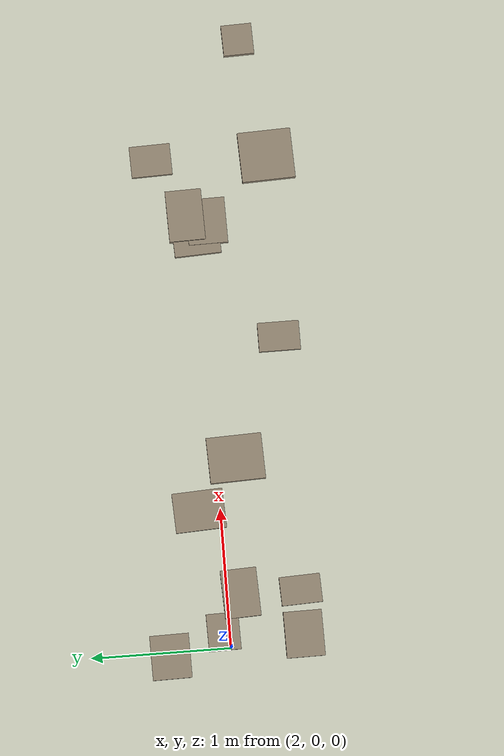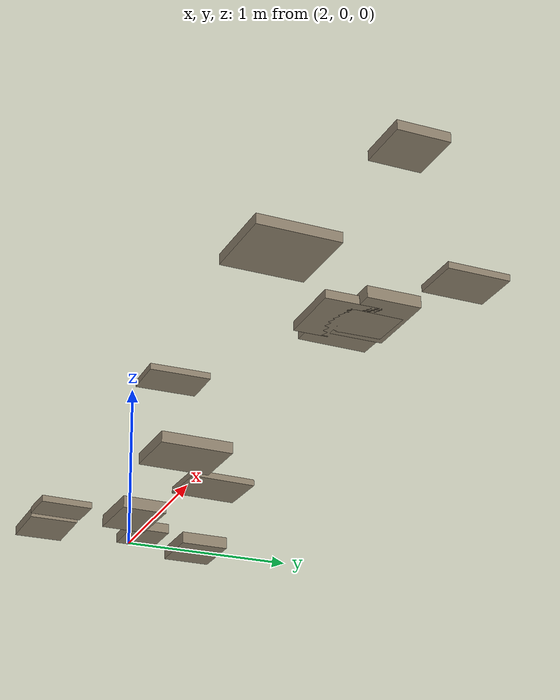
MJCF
<mujoco model="terrain obstacles">
  <!-- scattered 3-7 cm boxes across the lane (scripts/make_terrain_benchmark.py) -->
  <asset>
    <material name="terrain" rgba="0.55 0.5 0.42 1"/>
  </asset>
  <worldbody>
    <geom name="obstacle0" type="box" pos="2.1201 0.0431 0.0280" size="0.1324 0.1151 0.0280" euler="0.00000 0.00000 1.14885" material="terrain" contype="1" conaffinity="1" condim="3" friction="1.0 0.5 0.1"/>
    <geom name="obstacle1" type="box" pos="4.2151 -0.5162 0.0157" size="0.1058 0.1507 0.0157" euler="0.00000 0.00000 0.28498" material="terrain" contype="1" conaffinity="1" condim="3" friction="1.0 0.5 0.1"/>
    <geom name="obstacle2" type="box" pos="2.9948 0.1529 0.0175" size="0.1425 0.1827 0.0175" euler="0.00000 0.00000 2.97732" material="terrain" contype="1" conaffinity="1" condim="3" friction="1.0 0.5 0.1"/>
    <geom name="obstacle3" type="box" pos="1.9702 0.4302 0.0345" size="0.1577 0.1397 0.0345" euler="0.00000 0.00000 0.90983" material="terrain" contype="1" conaffinity="1" condim="3" friction="1.0 0.5 0.1"/>
    <geom name="obstacle4" type="box" pos="6.4335 -0.3831 0.0212" size="0.1144 0.1118 0.0212" euler="0.00000 0.00000 1.82715" material="terrain" contype="1" conaffinity="1" condim="3" friction="1.0 0.5 0.1"/>
    <geom name="obstacle5" type="box" pos="2.0642 -0.5285 0.0260" size="0.1639 0.1372 0.0260" euler="0.00000 0.00000 0.64704" material="terrain" contype="1" conaffinity="1" condim="3" friction="1.0 0.5 0.1"/>
    <geom name="obstacle6" type="box" pos="5.0963 -0.0562 0.0213" size="0.1680 0.1428 0.0213" euler="0.00000 0.00000 0.94175" material="terrain" contype="1" conaffinity="1" condim="3" friction="1.0 0.5 0.1"/>
    <geom name="obstacle7" type="box" pos="5.0317 0.0302 0.0199" size="0.1794 0.1699 0.0199" euler="0.00000 0.00000 2.74933" material="terrain" contype="1" conaffinity="1" condim="3" friction="1.0 0.5 0.1"/>
    <geom name="obstacle8" type="box" pos="2.3848 -0.0983 0.0346" size="0.1729 0.1288 0.0346" euler="0.00000 0.00000 2.37863" material="terrain" contype="1" conaffinity="1" condim="3" friction="1.0 0.5 0.1"/>
    <geom name="obstacle9" type="box" pos="5.5757 0.3175 0.0158" size="0.1152 0.1489 0.0158" euler="0.00000 0.00000 1.80021" material="terrain" contype="1" conaffinity="1" condim="3" friction="1.0 0.5 0.1"/>
    <geom name="obstacle10" type="box" pos="5.1473 0.0959 0.0289" size="0.1875 0.1314 0.0289" euler="0.00000 0.00000 1.43321" material="terrain" contype="1" conaffinity="1" condim="3" friction="1.0 0.5 0.1"/>
    <geom name="obstacle11" type="box" pos="5.5521 -0.5272 0.0245" size="0.1840 0.1945 0.0245" euler="0.00000 0.00000 2.20380" material="terrain" contype="1" conaffinity="1" condim="3" friction="1.0 0.5 0.1"/>
    <geom name="obstacle12" type="box" pos="3.3507 -0.1371 0.0314" size="0.1647 0.1993 0.0314" euler="0.00000 0.00000 2.10063" material="terrain" contype="1" conaffinity="1" condim="3" friction="1.0 0.5 0.1"/>
    <geom name="obstacle13" type="box" pos="2.3792 -0.5293 0.0184" size="0.1023 0.1462 0.0184" euler="0.00000 0.00000 2.41348" material="terrain" contype="1" conaffinity="1" condim="3" friction="1.0 0.5 0.1"/>
  </worldbody>
</mujoco>
